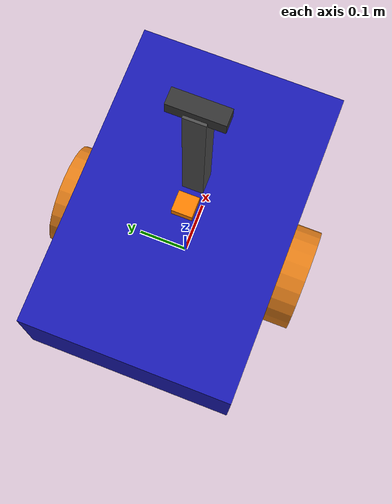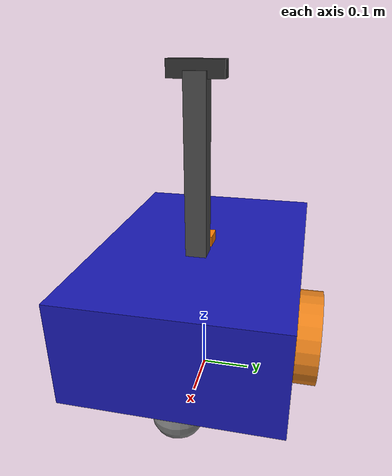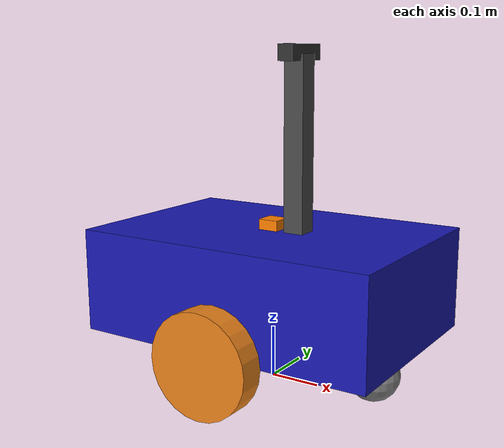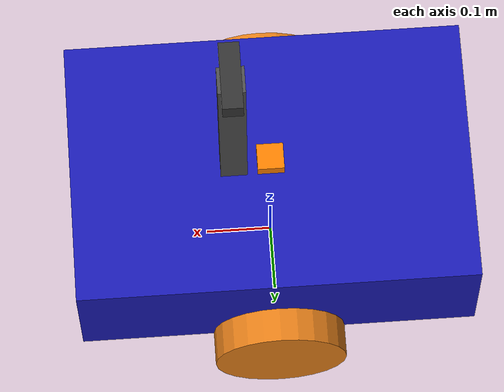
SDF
<?xml version='1.0' encoding='UTF-8'?>
<sdf version="1.7">
<model name="localbot">
  <self_collide>false</self_collide>
  <static>false</static>

  <!-- base_footprint: virtual ground-plane projection (zero-inertia link).
       The DiffDrive plugin uses this as child_frame_id for odometry.
       RSP uses base_footprint as the URDF root frame. -->
  <link name="base_footprint">
    <pose>0 0 0 0 0 0</pose>
    <inertial>
      <mass>0.0001</mass>
      <inertia><ixx>0.000001</ixx><ixy>0</ixy><ixz>0</ixz>
               <iyy>0.000001</iyy><iyz>0</iyz><izz>0.000001</izz></inertia>
    </inertial>
  </link>

  <!-- base_link: main chassis body.
       Positioned at wheel_radius + base_height/2 = 0.1 + 0.1 = 0.2 m above ground.
       Matches URDF: base_joint origin z = wheel_radius + base_height/2 = 0.2 m. -->
  <link name="base_link">
    <pose>0 0 0.2 0 0 0</pose>
    <inertial>
      <mass>15.0</mass>
      <!-- Solid box inertia: I = m/12 * (a² + b²) -->
      <inertia>
        <ixx>0.250000</ixx>
        <ixy>0</ixy><ixz>0</ixz>
        <iyy>0.508333</iyy>
        <iyz>0</iyz>
        <izz>0.625000</izz>
      </inertia>
    </inertial>
    <!-- Main chassis body: 0.6 × 0.4 × 0.2 m blue box -->
    <visual name="base_visual">
      <pose>0 0 0 0 0 0</pose>
      <geometry>
        <box><size>0.6 0.4 0.2</size></box>
      </geometry>
      <material>
        <ambient>0.1 0.1 0.5 1</ambient>   <!-- navy blue -->
        <diffuse>0.1 0.1 0.7 1</diffuse>
        <specular>0.2 0.2 0.2 1</specular>
      </material>
    </visual>
    <!-- Camera mast: thin vertical pole supporting the camera housing -->
    <visual name="mast_visual">
      <pose>0.0553 0 0.215 0 0 0</pose>  <!-- centered at mast midpoint -->
      <geometry>
        <box><size>0.04 0.04 0.43</size></box>
      </geometry>
      <material>
        <ambient>0.3 0.3 0.3 1</ambient>
        <diffuse>0.3 0.3 0.3 1</diffuse>
      </material>
    </visual>
    <!-- Collision uses single box (conservative, avoids thin geometry issues) -->
    <collision name="base_collision">
      <pose>0 0 0 0 0 0</pose>
      <geometry>
        <box><size>0.6 0.4 0.2</size></box>
      </geometry>
      <surface>
        <contact><ode/></contact>
        <friction>
          <ode><mu>0.01</mu><mu2>0.01</mu2></ode>
        </friction>
      </surface>
    </collision>
  </link>

  <link name="left_wheel_link">
    <pose>0 0.225 0.1 0 0 0</pose>
    <inertial>
      <mass>2.0</mass>
      <!-- Solid cylinder: Ixx=Iyy=m/12*(3r²+h²), Izz=mr²/2 -->
      <inertia>
        <ixx>0.008542</ixx>
        <ixy>0</ixy><ixz>0</ixz>
        <iyy>0.008542</iyy>
        <iyz>0</iyz>
        <izz>0.010000</izz>
      </inertia>
    </inertial>
    <visual name="left_wheel_visual">
      <!-- Rotate cylinder 90° around X so it appears as a side-facing wheel -->
      <pose>0 0 0 1.5708 0 0</pose>
      <geometry>
        <cylinder><radius>0.1</radius><length>0.05</length></cylinder>
      </geometry>
      <material>
        <ambient>0.8 0.4 0.0 1</ambient>   <!-- orange wheels -->
        <diffuse>0.9 0.5 0.1 1</diffuse>
      </material>
    </visual>
    <collision name="left_wheel_collision">
      <pose>0 0 0 1.5708 0 0</pose>
      <geometry>
        <cylinder><radius>0.1</radius><length>0.05</length></cylinder>
      </geometry>
      <surface>
        <contact><ode>
          <kp>1000000.0</kp><kd>100.0</kd>
          <min_depth>0.001</min_depth>
        </ode></contact>
        <friction>
          <ode><mu>1.2</mu><mu2>1.2</mu2></ode>
        </friction>
      </surface>
    </collision>
  </link>

  <!-- right_wheel_link: right drive wheel (mirror of left) -->
  <link name="right_wheel_link">
    <pose>0 -0.225 0.1 0 0 0</pose>
    <inertial>
      <mass>2.0</mass>
      <inertia>
        <ixx>0.008542</ixx><ixy>0</ixy><ixz>0</ixz>
        <iyy>0.008542</iyy><iyz>0</iyz><izz>0.010000</izz>
      </inertia>
    </inertial>
    <visual name="right_wheel_visual">
      <pose>0 0 0 1.5708 0 0</pose>
      <geometry>
        <cylinder><radius>0.1</radius><length>0.05</length></cylinder>
      </geometry>
      <material>
        <ambient>0.8 0.4 0.0 1</ambient>
        <diffuse>0.9 0.5 0.1 1</diffuse>
      </material>
    </visual>
    <collision name="right_wheel_collision">
      <pose>0 0 0 1.5708 0 0</pose>
      <geometry>
        <cylinder><radius>0.1</radius><length>0.05</length></cylinder>
      </geometry>
      <surface>
        <contact><ode><kp>1000000.0</kp><kd>100.0</kd><min_depth>0.001</min_depth></ode></contact>
        <friction><ode><mu>1.2</mu><mu2>1.2</mu2></ode></friction>
      </surface>
    </collision>
  </link>

  <!-- front_caster_wheel_link: front passive caster (low friction sphere).
       Located at front of chassis at x=base_length/2-0.08=0.22, z=caster_radius=0.05 -->
  <link name="front_caster_wheel_link">
    <pose>0.22 0 0.05 0 0 0</pose>
    <inertial>
      <mass>0.5</mass>
      <inertia>
        <ixx>0.001</ixx><ixy>0</ixy><ixz>0</ixz>
        <iyy>0.001</iyy><iyz>0</iyz><izz>0.001</izz>
      </inertia>
    </inertial>
    <visual name="front_caster_visual">
      <geometry>
        <sphere><radius>0.05</radius></sphere>
      </geometry>
      <material>
        <ambient>0.5 0.5 0.5 1</ambient>
        <diffuse>0.5 0.5 0.5 1</diffuse>
      </material>
    </visual>
    <collision name="front_caster_collision">
      <geometry>
        <sphere><radius>0.05</radius></sphere>
      </geometry>
      <surface>
        <contact><ode><kp>1000000.0</kp><kd>100.0</kd></ode></contact>
        <!-- Very low friction for free-rolling caster behavior -->
        <friction><ode><mu>0.01</mu><mu2>0.01</mu2></ode></friction>
      </surface>
    </collision>
  </link>

  <!-- rear_caster_wheel_link: rear passive caster -->
  <link name="rear_caster_wheel_link">
    <pose>-0.22 0 0.05 0 0 0</pose>
    <inertial>
      <mass>0.5</mass>
      <inertia>
        <ixx>0.001</ixx><ixy>0</ixy><ixz>0</ixz>
        <iyy>0.001</iyy><iyz>0</iyz><izz>0.001</izz>
      </inertia>
    </inertial>
    <visual name="rear_caster_visual">
      <geometry><sphere><radius>0.05</radius></sphere></geometry>
      <material><ambient>0.5 0.5 0.5 1</ambient><diffuse>0.5 0.5 0.5 1</diffuse></material>
    </visual>
    <collision name="rear_caster_collision">
      <geometry><sphere><radius>0.05</radius></sphere></geometry>
      <surface>
        <contact><ode><kp>1000000.0</kp><kd>100.0</kd></ode></contact>
        <friction><ode><mu>0.01</mu><mu2>0.01</mu2></ode></friction>
      </surface>
    </collision>
  </link>

  <link name="camera_link">
    <pose>0.0553 0 0.6323 0 0 0</pose>
    <inertial>
      <mass>0.1</mass>
      <inertia>
        <ixx>0.0001</ixx><ixy>0</ixy><ixz>0</ixz>
        <iyy>0.0001</iyy><iyz>0</iyz><izz>0.0001</izz>
      </inertia>
    </inertial>
    <!-- Camera housing visual: small dark grey box -->
    <visual name="camera_visual">
      <pose>0 0 0 0 0 0</pose>
      <geometry>
        <box><size>0.03 0.10 0.03</size></box>
      </geometry>
      <material>
        <ambient>0.1 0.1 0.1 1</ambient>
        <diffuse>0.2 0.2 0.2 1</diffuse>
      </material>
    </visual>
    <collision name="camera_collision">
      <pose>0 0 0 0 0 0</pose>
      <geometry>
        <box><size>0.03 0.10 0.03</size></box>
      </geometry>
    </collision>

    <sensor name="color" type="camera">
      <pose>0 0.0325 0.0125 0 0 0</pose>
      <always_on>1</always_on>
      <update_rate>30</update_rate>
      <visualize>false</visualize>
      <camera>
        <horizontal_fov>1.3962634</horizontal_fov>
        <image>
          <width>640</width>
          <height>480</height>
          <format>R8G8B8</format>
        </image>
        <clip>
          <near>0.1</near>
          <far>25.0</far>
        </clip>
        <noise>
          <type>gaussian</type>
          <mean>0.0</mean>
          <stddev>0.005</stddev>
        </noise>
        <!-- frame_id for published camera_info — must match URDF TF tree -->
        <optical_frame_id>camera_link_optical</optical_frame_id>
      </camera>
    </sensor>

    <sensor name="depth" type="depth_camera">
      <pose>0 0.0175 0.0125 0 0 0</pose>
      <always_on>1</always_on>
      <update_rate>30</update_rate>
      <visualize>false</visualize>
      <camera>
        <horizontal_fov>1.3962634</horizontal_fov>
        <image>
          <width>640</width>
          <height>480</height>
          <format>R_FLOAT32</format>
        </image>
        <clip>
          <near>0.3</near>
          <far>10.0</far>
        </clip>
        <noise>
          <type>gaussian</type>
          <mean>0.0</mean>
          <stddev>0.003</stddev>
        </noise>
        <optical_frame_id>camera_link_optical</optical_frame_id>
      </camera>
    </sensor>
  </link>

  <link name="imu_link">
    <pose>0 0 0.31 0 0 0</pose>
    <inertial>
      <mass>0.05</mass>
      <inertia>
        <ixx>0.00001</ixx><ixy>0</ixy><ixz>0</ixz>
        <iyy>0.00001</iyy><iyz>0</iyz><izz>0.00001</izz>
      </inertia>
    </inertial>
    <visual name="imu_visual">
      <geometry><box><size>0.04 0.04 0.02</size></box></geometry>
      <material><ambient>1.0 0.5 0.0 1</ambient><diffuse>1.0 0.5 0.0 1</diffuse></material>
    </visual>
    <!-- ── IMU sensor ──────────────────────────────────────────────────────── -->
    <sensor name="imu" type="imu">
      <always_on>1</always_on>
      <update_rate>50</update_rate>
      <visualize>false</visualize>
      <imu>
        <angular_velocity>
          <x><noise type="gaussian"><mean>0.0</mean><stddev>0.005</stddev></noise></x>
          <y><noise type="gaussian"><mean>0.0</mean><stddev>0.005</stddev></noise></y>
          <z><noise type="gaussian"><mean>0.0</mean><stddev>0.005</stddev></noise></z>
        </angular_velocity>
        <linear_acceleration>
          <x><noise type="gaussian"><mean>0.0</mean><stddev>0.05</stddev></noise></x>
          <y><noise type="gaussian"><mean>0.0</mean><stddev>0.05</stddev></noise></y>
          <z><noise type="gaussian"><mean>0.0</mean><stddev>0.05</stddev></noise></z>
        </linear_acceleration>
      </imu>
      <frame_id>imu_link</frame_id>
    </sensor>
  </link>

  <!-- base_joint: rigidly connects base_footprint (virtual) → base_link (chassis) -->
  <joint name="base_joint" type="fixed">
    <parent>base_footprint</parent>
    <child>base_link</child>
  </joint>

  <joint name="left_wheel_joint" type="revolute">
    <parent>base_link</parent>
    <child>left_wheel_link</child>
    <axis>
      <xyz>0 1 0</xyz>          <!-- wheel axle = model Y axis -->
      <limit>
        <effort>100</effort>
        <velocity>10</velocity>  <!-- ~1 m/s at r=0.1m -->
      </limit>
      <dynamics>
        <damping>0.5</damping>
        <friction>0.0</friction>
      </dynamics>
      <use_parent_model_frame>0</use_parent_model_frame>
    </axis>
  </joint>

  <!-- right_wheel_joint: right drive wheel revolute joint (mirror of left) -->
  <joint name="right_wheel_joint" type="revolute">
    <parent>base_link</parent>
    <child>right_wheel_link</child>
    <axis>
      <xyz>0 1 0</xyz>
      <limit><effort>100</effort><velocity>10</velocity></limit>
      <dynamics><damping>0.5</damping><friction>0.0</friction></dynamics>
      <use_parent_model_frame>0</use_parent_model_frame>
    </axis>
  </joint>

  <!-- front_caster_wheel_joint: ball joint for passive caster (free rotation) -->
  <joint name="front_caster_wheel_joint" type="ball">
    <parent>base_link</parent>
    <child>front_caster_wheel_link</child>
  </joint>

  <!-- rear_caster_wheel_joint: ball joint for rear caster -->
  <joint name="rear_caster_wheel_joint" type="ball">
    <parent>base_link</parent>
    <child>rear_caster_wheel_link</child>
  </joint>

  <!-- base_camera_joint: rigidly mounts camera_link to chassis.
       Origin xyz="0.0553 0 0.4323" from base_link → MATCHES URDF base_camera_joint exactly. -->
  <joint name="base_camera_joint" type="fixed">
    <parent>base_link</parent>
    <child>camera_link</child>
  </joint>

  <!-- base_imu_joint: rigidly mounts IMU to chassis top.
       MATCHES URDF base_imu_joint: origin z = base_height/2 + 0.01 = 0.11 from base_link. -->
  <joint name="base_imu_joint" type="fixed">
    <parent>base_link</parent>
    <child>imu_link</child>
  </joint>

  <!-- ══════════════════════════════════════════════════════════════════════
       GAZEBO PLUGINS
       ══════════════════════════════════════════════════════════════════════ -->

  <plugin filename="gz-sim-diff-drive-system"
          name="gz::sim::systems::DiffDrive">
    <!-- Joint names MUST match the revolute joint names above (and URDF) -->
    <left_joint>left_wheel_joint</left_joint>
    <right_joint>right_wheel_joint</right_joint>
    <wheel_separation>0.45</wheel_separation>
    <wheel_radius>0.1</wheel_radius>
    <odom_publish_frequency>20</odom_publish_frequency>
    <!-- Velocity limits (match ugv_base.urdf.xacro DiffDrive plugin) -->
    <max_linear_acceleration>2.0</max_linear_acceleration>
    <min_linear_acceleration>-2.0</min_linear_acceleration>
    <max_angular_acceleration>3.0</max_angular_acceleration>
    <min_angular_acceleration>-3.0</min_angular_acceleration>
    <max_linear_velocity>1.5</max_linear_velocity>
    <min_linear_velocity>-1.5</min_linear_velocity>
    <max_angular_velocity>2.0</max_angular_velocity>
    <min_angular_velocity>-2.0</min_angular_velocity>
    <!-- TF frame IDs published in /model/localbot/tf -->
    <frame_id>odom</frame_id>
    <child_frame_id>base_footprint</child_frame_id>
  </plugin>

  <plugin filename="gz-sim-joint-state-publisher-system"
          name="gz::sim::systems::JointStatePublisher">
    <joint_name>left_wheel_joint</joint_name>
    <joint_name>right_wheel_joint</joint_name>
  </plugin>

</model>
</sdf>
